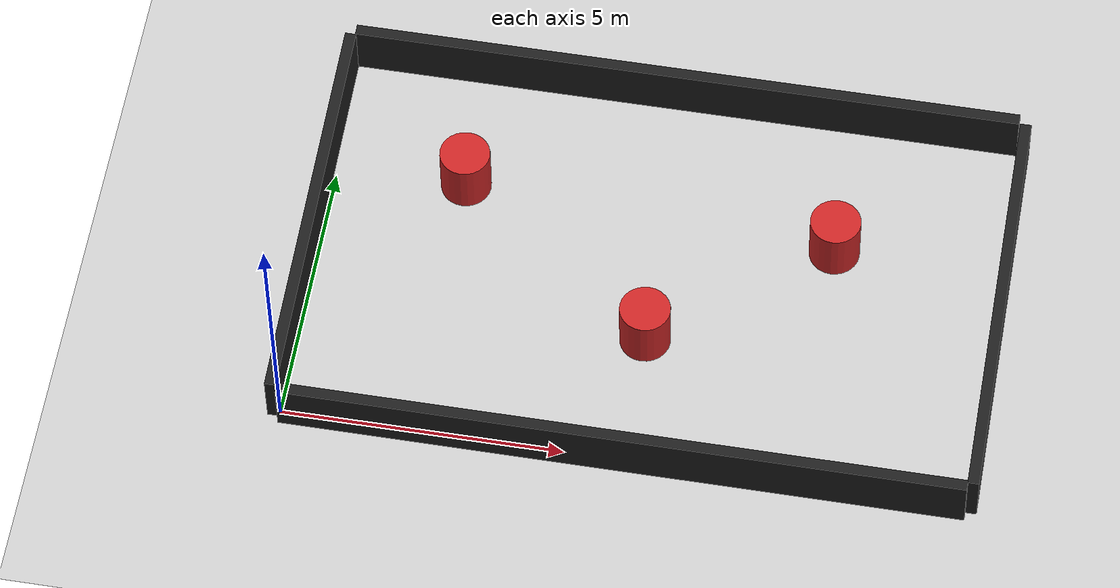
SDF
<sdf version="1.7">
 <world name="default">
  <light name="sun" type="directional">
   <pose>0 0 10 0 -0 0</pose>
   <diffuse>0.8 0.8 0.8 1</diffuse>
   <specular>0.2 0.2 0.2 1</specular>
   <attenuation>
    <range>1000</range>
    <constant>0.9</constant>
    <linear>0.01</linear>
    <quadratic>0.001</quadratic>
   </attenuation>
   <direction>-0.5 0.1 -0.9</direction>
   <spot><inner_angle>0</inner_angle><outer_angle>0</outer_angle><falloff>0</falloff></spot>
  </light>
  <model name="ground_plane">
   <static>1</static>
   <link name="link">
    <collision name="collision">
     <geometry><plane><normal>0 0 1</normal><size>100 100</size></plane></geometry>
     <surface>
      <contact><collide_bitmask>65535</collide_bitmask></contact>
      <friction><ode><mu>100</mu><mu2>50</mu2></ode></friction>
     </surface>
    </collision>
    <visual name="visual">
     <cast_shadows>0</cast_shadows>
     <geometry><plane><normal>0 0 1</normal><size>100 100</size></plane></geometry>
     <material>
      <script><uri>file://media/materials/scripts/gazebo.material</uri><name>Gazebo/Grey</name></script>
     </material>
    </visual>
   </link>
  </model>
  <gravity>0 0 -9.8</gravity>
  <magnetic_field>6e-06 2.3e-05 -4.2e-05</magnetic_field>
  <atmosphere type="adiabatic"/>
  <physics type="ode">
   <max_step_size>0.001</max_step_size>
   <real_time_factor>1</real_time_factor>
   <real_time_update_rate>1000</real_time_update_rate>
  </physics>
  <scene><ambient>0.4 0.4 0.4 1</ambient><background>0.7 0.7 0.7 1</background><shadows>1</shadows></scene>
  <spherical_coordinates>
   <surface_model>EARTH_WGS84</surface_model>
   <latitude_deg>0</latitude_deg>
   <longitude_deg>0</longitude_deg>
   <elevation>0</elevation>
   <heading_deg>0</heading_deg>
  </spherical_coordinates>
  <model name="grey_wall">
   <static>1</static>
   <link name="link">
    <pose>0 0 1.4 0 -0 0</pose>
    <collision name="collision"><geometry><box><size>12 0.2 1</size></box></geometry></collision>
    <visual name="visual">
     <cast_shadows>0</cast_shadows>
     <geometry><box><size>12 0.2 1</size></box></geometry>
     <material>
      <script>
       <uri>model://grey_wall/materials/scripts</uri>
       <uri>model://grey_wall/materials/textures</uri>
       <name>Gazebo/Black</name>
      </script>
     </material>
    </visual>
   </link>
   <pose>5.99944 -0.134635 -0.866415 0 -0 0</pose>
  </model>
  <model name="grey_wall_clone">
   <static>1</static>
   <link name="link">
    <pose>0 0 1.4 0 -0 0</pose>
    <collision name="collision"><geometry><box><size>12 0.2 1</size></box></geometry></collision>
    <visual name="visual">
     <cast_shadows>0</cast_shadows>
     <geometry><box><size>12 0.2 1</size></box></geometry>
     <material>
      <script>
       <uri>model://grey_wall/materials/scripts</uri>
       <uri>model://grey_wall/materials/textures</uri>
       <name>Gazebo/Black</name>
      </script>
     </material>
    </visual>
   </link>
   <pose>5.90771 7.51416 -0.880329 0 -0 0</pose>
  </model>
  <model name="grey_wall_0">
   <static>1</static>
   <link name="link">
    <pose>0 0 1.4 0 -0 0</pose>
    <collision name="collision"><geometry><box><size>7.5 0.2 1</size></box></geometry></collision>
    <visual name="visual">
     <cast_shadows>0</cast_shadows>
     <geometry><box><size>7.5 0.2 1</size></box></geometry>
     <material>
      <script>
       <uri>model://grey_wall/materials/scripts</uri>
       <uri>model://grey_wall/materials/textures</uri>
       <name>Gazebo/Black</name>
      </script>
     </material>
    </visual>
   </link>
   <pose>-0.146451 3.67254 -0.902743 0 -0 1.57888</pose>
  </model>
  <model name="grey_wall_0_clone">
   <static>1</static>
   <link name="link">
    <pose>0 0 1.4 0 -0 0</pose>
    <collision name="collision"><geometry><box><size>7.5 0.2 1</size></box></geometry></collision>
    <visual name="visual">
     <cast_shadows>0</cast_shadows>
     <geometry><box><size>7.5 0.2 1</size></box></geometry>
     <material>
      <script>
       <uri>model://grey_wall/materials/scripts</uri>
       <uri>model://grey_wall/materials/textures</uri>
       <name>Gazebo/Black</name>
      </script>
     </material>
    </visual>
   </link>
   <pose>12.0622 3.69729 -0.912524 0 -0 1.57888</pose>
  </model>
  <model name="unit_cylinder">
   <pose>6.00033 2.50329 0.499997 3e-06 3e-06 0</pose>
   <link name="link">
    <inertial>
     <mass>1</mass>
     <inertia><ixx>0.145833</ixx><ixy>0</ixy><ixz>0</ixz><iyy>0.145833</iyy><iyz>0</iyz><izz>0.125</izz></inertia>
    </inertial>
    <collision name="collision">
     <geometry><cylinder><radius>0.45</radius><length>1</length></cylinder></geometry>
    </collision>
    <visual name="visual">
     <geometry><cylinder><radius>0.45</radius><length>1</length></cylinder></geometry>
     <material>
      <script><name>Gazebo/Red</name><uri>file://media/materials/scripts/gazebo.material</uri></script>
     </material>
    </visual>
   </link>
  </model>
  <model name="unit_cylinder_clone">
   <pose>2.31948 5.19785 0.499997 3e-06 3e-06 0</pose>
   <link name="link">
    <inertial>
     <mass>1</mass>
     <inertia><ixx>0.145833</ixx><ixy>0</ixy><ixz>0</ixz><iyy>0.145833</iyy><iyz>0</iyz><izz>0.125</izz></inertia>
    </inertial>
    <collision name="collision">
     <geometry><cylinder><radius>0.45</radius><length>1</length></cylinder></geometry>
    </collision>
    <visual name="visual">
     <geometry><cylinder><radius>0.45</radius><length>1</length></cylinder></geometry>
     <material>
      <script><name>Gazebo/Red</name><uri>file://media/materials/scripts/gazebo.material</uri></script>
     </material>
    </visual>
   </link>
  </model>
  <model name="unit_cylinder_clone_clone">
   <pose>9.003 4.83984 0.499997 3e-06 3e-06 0</pose>
   <link name="link">
    <inertial>
     <mass>1</mass>
     <inertia><ixx>0.145833</ixx><ixy>0</ixy><ixz>0</ixz><iyy>0.145833</iyy><iyz>0</iyz><izz>0.125</izz></inertia>
    </inertial>
    <collision name="collision">
     <geometry><cylinder><radius>0.45</radius><length>1</length></cylinder></geometry>
    </collision>
    <visual name="visual">
     <geometry><cylinder><radius>0.45</radius><length>1</length></cylinder></geometry>
     <material>
      <script><name>Gazebo/Red</name><uri>file://media/materials/scripts/gazebo.material</uri></script>
     </material>
    </visual>
   </link>
  </model>
 </world>
</sdf>
